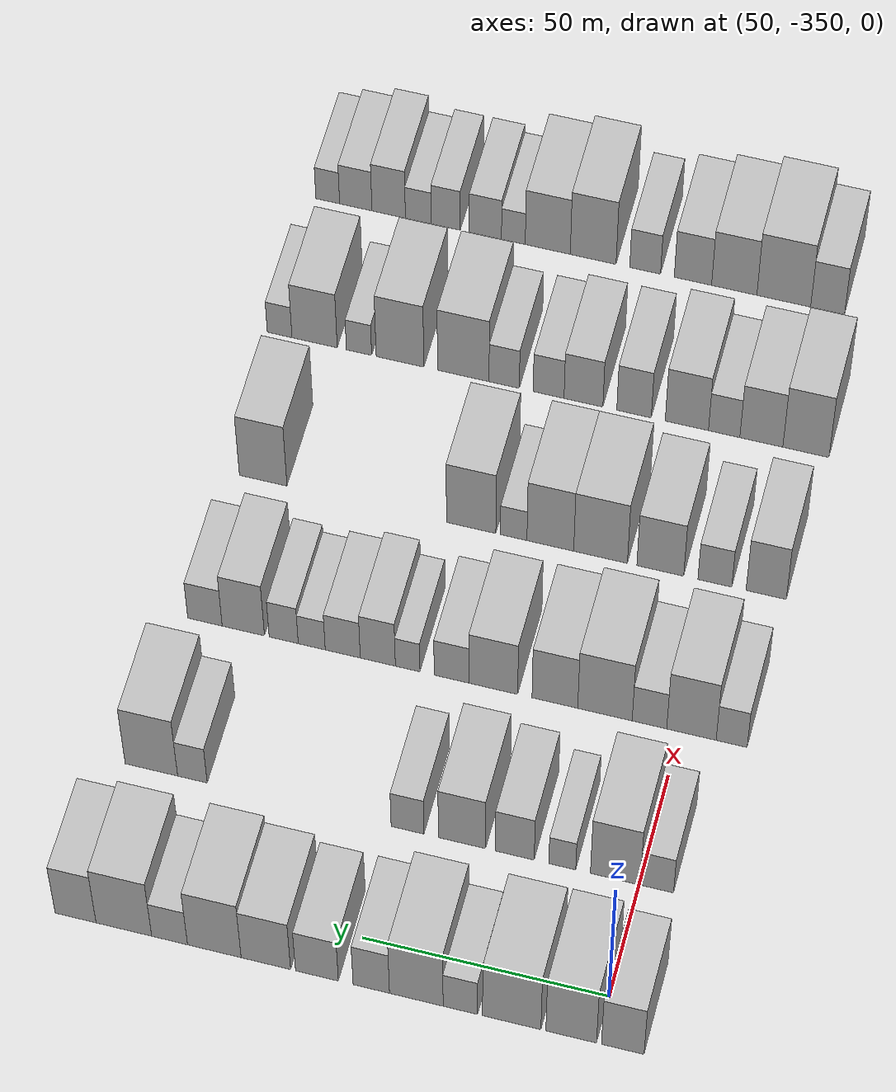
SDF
<sdf version="1.6">
 <world name="default">
  <model name="building_21">
   <static>1</static>
   <pose>50.0000 -355.0789 0 0.000000 0.000000 0.000000</pose>
   <link name="link">
    <pose>0 0 10.50 0 0 0</pose>
    <collision name="collision"><geometry><box><size>20.0000 8.5269 21.0000</size></box></geometry></collision>
    <visual name="visual">
     <cast_shadows>0</cast_shadows>
     <geometry><box><size>20.0000 8.5269 21.0000</size></box></geometry>
     <material>
      <script>
       <uri>model://HANNAS_wall/materials/scripts</uri>
       <uri>model://HANNAS_wall/materials/textures</uri>
       <name>vrc/HANNAS_wall</name>
      </script>
     </material>
    </visual>
   </link>
  </model>
  <model name="building_22">
   <static>1</static>
   <pose>50.0000 -344.7363 0 0.000000 0.000000 0.000000</pose>
   <link name="link">
    <pose>0 0 12.00 0 0 0</pose>
    <collision name="collision"><geometry><box><size>20.0000 10.1581 24.0000</size></box></geometry></collision>
    <visual name="visual">
     <cast_shadows>0</cast_shadows>
     <geometry><box><size>20.0000 10.1581 24.0000</size></box></geometry>
     <material>
      <script>
       <uri>model://HANNAS_wall/materials/scripts</uri>
       <uri>model://HANNAS_wall/materials/textures</uri>
       <name>vrc/HANNAS_wall</name>
      </script>
     </material>
    </visual>
   </link>
  </model>
  <model name="building_23">
   <static>1</static>
   <pose>50.0000 -332.7798 0 0.000000 0.000000 0.000000</pose>
   <link name="link">
    <pose>0 0 12.00 0 0 0</pose>
    <collision name="collision"><geometry><box><size>20.0000 11.7550 24.0000</size></box></geometry></collision>
    <visual name="visual">
     <cast_shadows>0</cast_shadows>
     <geometry><box><size>20.0000 11.7550 24.0000</size></box></geometry>
     <material>
      <script>
       <uri>model://HANNAS_wall/materials/scripts</uri>
       <uri>model://HANNAS_wall/materials/textures</uri>
       <name>vrc/HANNAS_wall</name>
      </script>
     </material>
    </visual>
   </link>
  </model>
  <model name="building_24">
   <static>1</static>
   <pose>50.0000 -322.4275 0 0.000000 0.000000 0.000000</pose>
   <link name="link">
    <pose>0 0 7.50 0 0 0</pose>
    <collision name="collision"><geometry><box><size>20.0000 6.9496 15.0000</size></box></geometry></collision>
    <visual name="visual">
     <cast_shadows>0</cast_shadows>
     <geometry><box><size>20.0000 6.9496 15.0000</size></box></geometry>
     <material>
      <script>
       <uri>model://HANNAS_wall/materials/scripts</uri>
       <uri>model://HANNAS_wall/materials/textures</uri>
       <name>vrc/HANNAS_wall</name>
      </script>
     </material>
    </visual>
   </link>
  </model>
  <model name="building_25">
   <static>1</static>
   <pose>50.0000 -313.5179 0 0.000000 0.000000 0.000000</pose>
   <link name="link">
    <pose>0 0 12.00 0 0 0</pose>
    <collision name="collision"><geometry><box><size>20.0000 10.8697 24.0000</size></box></geometry></collision>
    <visual name="visual">
     <cast_shadows>0</cast_shadows>
     <geometry><box><size>20.0000 10.8697 24.0000</size></box></geometry>
     <material>
      <script>
       <uri>model://HANNAS_wall/materials/scripts</uri>
       <uri>model://HANNAS_wall/materials/textures</uri>
       <name>vrc/HANNAS_wall</name>
      </script>
     </material>
    </visual>
   </link>
  </model>
  <model name="building_26">
   <static>1</static>
   <pose>50.0000 -304.3919 0 0.000000 0.000000 0.000000</pose>
   <link name="link">
    <pose>0 0 9.00 0 0 0</pose>
    <collision name="collision"><geometry><box><size>20.0000 7.3822 18.0000</size></box></geometry></collision>
    <visual name="visual">
     <cast_shadows>0</cast_shadows>
     <geometry><box><size>20.0000 7.3822 18.0000</size></box></geometry>
     <material>
      <script>
       <uri>model://HANNAS_wall/materials/scripts</uri>
       <uri>model://HANNAS_wall/materials/textures</uri>
       <name>vrc/HANNAS_wall</name>
      </script>
     </material>
    </visual>
   </link>
  </model>
  <model name="building_27">
   <static>1</static>
   <pose>50.0000 -293.3383 0 0.000000 0.000000 0.000000</pose>
   <link name="link">
    <pose>0 0 9.00 0 0 0</pose>
    <collision name="collision"><geometry><box><size>20.0000 8.7250 18.0000</size></box></geometry></collision>
    <visual name="visual">
     <cast_shadows>0</cast_shadows>
     <geometry><box><size>20.0000 8.7250 18.0000</size></box></geometry>
     <material>
      <script>
       <uri>model://HANNAS_wall/materials/scripts</uri>
       <uri>model://HANNAS_wall/materials/textures</uri>
       <name>vrc/HANNAS_wall</name>
      </script>
     </material>
    </visual>
   </link>
  </model>
  <model name="building_28">
   <static>1</static>
   <pose>50.0000 -282.9297 0 0.000000 0.000000 0.000000</pose>
   <link name="link">
    <pose>0 0 10.50 0 0 0</pose>
    <collision name="collision"><geometry><box><size>20.0000 10.0923 21.0000</size></box></geometry></collision>
    <visual name="visual">
     <cast_shadows>0</cast_shadows>
     <geometry><box><size>20.0000 10.0923 21.0000</size></box></geometry>
     <material>
      <script>
       <uri>model://HANNAS_wall/materials/scripts</uri>
       <uri>model://HANNAS_wall/materials/textures</uri>
       <name>vrc/HANNAS_wall</name>
      </script>
     </material>
    </visual>
   </link>
  </model>
  <model name="building_29">
   <static>1</static>
   <pose>50.0000 -272.3971 0 0.000000 0.000000 0.000000</pose>
   <link name="link">
    <pose>0 0 12.00 0 0 0</pose>
    <collision name="collision"><geometry><box><size>20.0000 10.9728 24.0000</size></box></geometry></collision>
    <visual name="visual">
     <cast_shadows>0</cast_shadows>
     <geometry><box><size>20.0000 10.9728 24.0000</size></box></geometry>
     <material>
      <script>
       <uri>model://HANNAS_wall/materials/scripts</uri>
       <uri>model://HANNAS_wall/materials/textures</uri>
       <name>vrc/HANNAS_wall</name>
      </script>
     </material>
    </visual>
   </link>
  </model>
  <model name="building_30">
   <static>1</static>
   <pose>50.0000 -263.2354 0 0.000000 0.000000 0.000000</pose>
   <link name="link">
    <pose>0 0 7.50 0 0 0</pose>
    <collision name="collision"><geometry><box><size>20.0000 7.3505 15.0000</size></box></geometry></collision>
    <visual name="visual">
     <cast_shadows>0</cast_shadows>
     <geometry><box><size>20.0000 7.3505 15.0000</size></box></geometry>
     <material>
      <script>
       <uri>model://HANNAS_wall/materials/scripts</uri>
       <uri>model://HANNAS_wall/materials/textures</uri>
       <name>vrc/HANNAS_wall</name>
      </script>
     </material>
    </visual>
   </link>
  </model>
  <model name="building_31">
   <static>1</static>
   <pose>50.0000 -253.8361 0 0.000000 0.000000 0.000000</pose>
   <link name="link">
    <pose>0 0 12.00 0 0 0</pose>
    <collision name="collision"><geometry><box><size>20.0000 11.4482 24.0000</size></box></geometry></collision>
    <visual name="visual">
     <cast_shadows>0</cast_shadows>
     <geometry><box><size>20.0000 11.4482 24.0000</size></box></geometry>
     <material>
      <script>
       <uri>model://HANNAS_wall/materials/scripts</uri>
       <uri>model://HANNAS_wall/materials/textures</uri>
       <name>vrc/HANNAS_wall</name>
      </script>
     </material>
    </visual>
   </link>
  </model>
  <model name="building_32">
   <static>1</static>
   <pose>50.0000 -243.9017 0 0.000000 0.000000 0.000000</pose>
   <link name="link">
    <pose>0 0 10.50 0 0 0</pose>
    <collision name="collision"><geometry><box><size>20.0000 8.4205 21.0000</size></box></geometry></collision>
    <visual name="visual">
     <cast_shadows>0</cast_shadows>
     <geometry><box><size>20.0000 8.4205 21.0000</size></box></geometry>
     <material>
      <script>
       <uri>model://HANNAS_wall/materials/scripts</uri>
       <uri>model://HANNAS_wall/materials/textures</uri>
       <name>vrc/HANNAS_wall</name>
      </script>
     </material>
    </visual>
   </link>
  </model>
  <model name="building_149">
   <static>1</static>
   <pose>85.0000 -353.4788 0 0.000000 0.000000 0.000000</pose>
   <link name="link">
    <pose>0 0 7.50 0 0 0</pose>
    <collision name="collision"><geometry><box><size>20.0000 6.8248 15.0000</size></box></geometry></collision>
    <visual name="visual">
     <cast_shadows>0</cast_shadows>
     <geometry><box><size>20.0000 6.8248 15.0000</size></box></geometry>
     <material>
      <script>
       <uri>model://HANNAS_wall/materials/scripts</uri>
       <uri>model://HANNAS_wall/materials/textures</uri>
       <name>vrc/HANNAS_wall</name>
      </script>
     </material>
    </visual>
   </link>
  </model>
  <model name="building_150">
   <static>1</static>
   <pose>85.0000 -344.9980 0 0.000000 0.000000 0.000000</pose>
   <link name="link">
    <pose>0 0 12.00 0 0 0</pose>
    <collision name="collision"><geometry><box><size>20.0000 10.1369 24.0000</size></box></geometry></collision>
    <visual name="visual">
     <cast_shadows>0</cast_shadows>
     <geometry><box><size>20.0000 10.1369 24.0000</size></box></geometry>
     <material>
      <script>
       <uri>model://HANNAS_wall/materials/scripts</uri>
       <uri>model://HANNAS_wall/materials/textures</uri>
       <name>vrc/HANNAS_wall</name>
      </script>
     </material>
    </visual>
   </link>
  </model>
  <model name="building_151">
   <static>1</static>
   <pose>85.0000 -334.1780 0 0.000000 0.000000 0.000000</pose>
   <link name="link">
    <pose>0 0 6.00 0 0 0</pose>
    <collision name="collision"><geometry><box><size>20.0000 5.5031 12.0000</size></box></geometry></collision>
    <visual name="visual">
     <cast_shadows>0</cast_shadows>
     <geometry><box><size>20.0000 5.5031 12.0000</size></box></geometry>
     <material>
      <script>
       <uri>model://HANNAS_wall/materials/scripts</uri>
       <uri>model://HANNAS_wall/materials/textures</uri>
       <name>vrc/HANNAS_wall</name>
      </script>
     </material>
    </visual>
   </link>
  </model>
  <model name="building_152">
   <static>1</static>
   <pose>85.0000 -324.4400 0 0.000000 0.000000 0.000000</pose>
   <link name="link">
    <pose>0 0 9.00 0 0 0</pose>
    <collision name="collision"><geometry><box><size>20.0000 7.9727 18.0000</size></box></geometry></collision>
    <visual name="visual">
     <cast_shadows>0</cast_shadows>
     <geometry><box><size>20.0000 7.9727 18.0000</size></box></geometry>
     <material>
      <script>
       <uri>model://HANNAS_wall/materials/scripts</uri>
       <uri>model://HANNAS_wall/materials/textures</uri>
       <name>vrc/HANNAS_wall</name>
      </script>
     </material>
    </visual>
   </link>
  </model>
  <model name="building_153">
   <static>1</static>
   <pose>85.0000 -313.6113 0 0.000000 0.000000 0.000000</pose>
   <link name="link">
    <pose>0 0 10.50 0 0 0</pose>
    <collision name="collision"><geometry><box><size>20.0000 9.6847 21.0000</size></box></geometry></collision>
    <visual name="visual">
     <cast_shadows>0</cast_shadows>
     <geometry><box><size>20.0000 9.6847 21.0000</size></box></geometry>
     <material>
      <script>
       <uri>model://HANNAS_wall/materials/scripts</uri>
       <uri>model://HANNAS_wall/materials/textures</uri>
       <name>vrc/HANNAS_wall</name>
      </script>
     </material>
    </visual>
   </link>
  </model>
  <model name="building_154">
   <static>1</static>
   <pose>85.0000 -302.3783 0 0.000000 0.000000 0.000000</pose>
   <link name="link">
    <pose>0 0 7.50 0 0 0</pose>
    <collision name="collision"><geometry><box><size>20.0000 6.7813 15.0000</size></box></geometry></collision>
    <visual name="visual">
     <cast_shadows>0</cast_shadows>
     <geometry><box><size>20.0000 6.7813 15.0000</size></box></geometry>
     <material>
      <script>
       <uri>model://HANNAS_wall/materials/scripts</uri>
       <uri>model://HANNAS_wall/materials/textures</uri>
       <name>vrc/HANNAS_wall</name>
      </script>
     </material>
    </visual>
   </link>
  </model>
  <model name="building_155">
   <static>1</static>
   <pose>85.0000 -257.7078 0 0.000000 0.000000 0.000000</pose>
   <link name="link">
    <pose>0 0 7.50 0 0 0</pose>
    <collision name="collision"><geometry><box><size>20.0000 6.1866 15.0000</size></box></geometry></collision>
    <visual name="visual">
     <cast_shadows>0</cast_shadows>
     <geometry><box><size>20.0000 6.1866 15.0000</size></box></geometry>
     <material>
      <script>
       <uri>model://HANNAS_wall/materials/scripts</uri>
       <uri>model://HANNAS_wall/materials/textures</uri>
       <name>vrc/HANNAS_wall</name>
      </script>
     </material>
    </visual>
   </link>
  </model>
  <model name="building_156">
   <static>1</static>
   <pose>85.0000 -249.1317 0 0.000000 0.000000 0.000000</pose>
   <link name="link">
    <pose>0 0 12.00 0 0 0</pose>
    <collision name="collision"><geometry><box><size>20.0000 10.9655 24.0000</size></box></geometry></collision>
    <visual name="visual">
     <cast_shadows>0</cast_shadows>
     <geometry><box><size>20.0000 10.9655 24.0000</size></box></geometry>
     <material>
      <script>
       <uri>model://HANNAS_wall/materials/scripts</uri>
       <uri>model://HANNAS_wall/materials/textures</uri>
       <name>vrc/HANNAS_wall</name>
      </script>
     </material>
    </visual>
   </link>
  </model>
  <model name="building_271">
   <static>1</static>
   <pose>120.0000 -360.5662 0 0.000000 0.000000 0.000000</pose>
   <link name="link">
    <pose>0 0 7.50 0 0 0</pose>
    <collision name="collision"><geometry><box><size>20.0000 6.4107 15.0000</size></box></geometry></collision>
    <visual name="visual">
     <cast_shadows>0</cast_shadows>
     <geometry><box><size>20.0000 6.4107 15.0000</size></box></geometry>
     <material>
      <script>
       <uri>model://HANNAS_wall/materials/scripts</uri>
       <uri>model://HANNAS_wall/materials/textures</uri>
       <name>vrc/HANNAS_wall</name>
      </script>
     </material>
    </visual>
   </link>
  </model>
  <model name="building_272">
   <static>1</static>
   <pose>120.0000 -352.2368 0 0.000000 0.000000 0.000000</pose>
   <link name="link">
    <pose>0 0 12.00 0 0 0</pose>
    <collision name="collision"><geometry><box><size>20.0000 10.2481 24.0000</size></box></geometry></collision>
    <visual name="visual">
     <cast_shadows>0</cast_shadows>
     <geometry><box><size>20.0000 10.2481 24.0000</size></box></geometry>
     <material>
      <script>
       <uri>model://HANNAS_wall/materials/scripts</uri>
       <uri>model://HANNAS_wall/materials/textures</uri>
       <name>vrc/HANNAS_wall</name>
      </script>
     </material>
    </visual>
   </link>
  </model>
  <model name="building_273">
   <static>1</static>
   <pose>120.0000 -343.5288 0 0.000000 0.000000 0.000000</pose>
   <link name="link">
    <pose>0 0 7.50 0 0 0</pose>
    <collision name="collision"><geometry><box><size>20.0000 7.1679 15.0000</size></box></geometry></collision>
    <visual name="visual">
     <cast_shadows>0</cast_shadows>
     <geometry><box><size>20.0000 7.1679 15.0000</size></box></geometry>
     <material>
      <script>
       <uri>model://HANNAS_wall/materials/scripts</uri>
       <uri>model://HANNAS_wall/materials/textures</uri>
       <name>vrc/HANNAS_wall</name>
      </script>
     </material>
    </visual>
   </link>
  </model>
  <model name="building_274">
   <static>1</static>
   <pose>120.0000 -334.2802 0 0.000000 0.000000 0.000000</pose>
   <link name="link">
    <pose>0 0 12.00 0 0 0</pose>
    <collision name="collision"><geometry><box><size>20.0000 11.3291 24.0000</size></box></geometry></collision>
    <visual name="visual">
     <cast_shadows>0</cast_shadows>
     <geometry><box><size>20.0000 11.3291 24.0000</size></box></geometry>
     <material>
      <script>
       <uri>model://HANNAS_wall/materials/scripts</uri>
       <uri>model://HANNAS_wall/materials/textures</uri>
       <name>vrc/HANNAS_wall</name>
      </script>
     </material>
    </visual>
   </link>
  </model>
  <model name="building_275">
   <static>1</static>
   <pose>120.0000 -323.8529 0 0.000000 0.000000 0.000000</pose>
   <link name="link">
    <pose>0 0 10.50 0 0 0</pose>
    <collision name="collision"><geometry><box><size>20.0000 9.5256 21.0000</size></box></geometry></collision>
    <visual name="visual">
     <cast_shadows>0</cast_shadows>
     <geometry><box><size>20.0000 9.5256 21.0000</size></box></geometry>
     <material>
      <script>
       <uri>model://HANNAS_wall/materials/scripts</uri>
       <uri>model://HANNAS_wall/materials/textures</uri>
       <name>vrc/HANNAS_wall</name>
      </script>
     </material>
    </visual>
   </link>
  </model>
  <model name="building_276">
   <static>1</static>
   <pose>120.0000 -310.9831 0 0.000000 0.000000 0.000000</pose>
   <link name="link">
    <pose>0 0 10.50 0 0 0</pose>
    <collision name="collision"><geometry><box><size>20.0000 10.2139 21.0000</size></box></geometry></collision>
    <visual name="visual">
     <cast_shadows>0</cast_shadows>
     <geometry><box><size>20.0000 10.2139 21.0000</size></box></geometry>
     <material>
      <script>
       <uri>model://HANNAS_wall/materials/scripts</uri>
       <uri>model://HANNAS_wall/materials/textures</uri>
       <name>vrc/HANNAS_wall</name>
      </script>
     </material>
    </visual>
   </link>
  </model>
  <model name="building_277">
   <static>1</static>
   <pose>120.0000 -302.2468 0 0.000000 0.000000 0.000000</pose>
   <link name="link">
    <pose>0 0 7.50 0 0 0</pose>
    <collision name="collision"><geometry><box><size>20.0000 7.2587 15.0000</size></box></geometry></collision>
    <visual name="visual">
     <cast_shadows>0</cast_shadows>
     <geometry><box><size>20.0000 7.2587 15.0000</size></box></geometry>
     <material>
      <script>
       <uri>model://HANNAS_wall/materials/scripts</uri>
       <uri>model://HANNAS_wall/materials/textures</uri>
       <name>vrc/HANNAS_wall</name>
      </script>
     </material>
    </visual>
   </link>
  </model>
  <model name="building_278">
   <static>1</static>
   <pose>120.0000 -293.0318 0 0.000000 0.000000 0.000000</pose>
   <link name="link">
    <pose>0 0 6.00 0 0 0</pose>
    <collision name="collision"><geometry><box><size>20.0000 5.1713 12.0000</size></box></geometry></collision>
    <visual name="visual">
     <cast_shadows>0</cast_shadows>
     <geometry><box><size>20.0000 5.1713 12.0000</size></box></geometry>
     <material>
      <script>
       <uri>model://HANNAS_wall/materials/scripts</uri>
       <uri>model://HANNAS_wall/materials/textures</uri>
       <name>vrc/HANNAS_wall</name>
      </script>
     </material>
    </visual>
   </link>
  </model>
  <model name="building_279">
   <static>1</static>
   <pose>120.0000 -286.7507 0 0.000000 0.000000 0.000000</pose>
   <link name="link">
    <pose>0 0 9.00 0 0 0</pose>
    <collision name="collision"><geometry><box><size>20.0000 7.3909 18.0000</size></box></geometry></collision>
    <visual name="visual">
     <cast_shadows>0</cast_shadows>
     <geometry><box><size>20.0000 7.3909 18.0000</size></box></geometry>
     <material>
      <script>
       <uri>model://HANNAS_wall/materials/scripts</uri>
       <uri>model://HANNAS_wall/materials/textures</uri>
       <name>vrc/HANNAS_wall</name>
      </script>
     </material>
    </visual>
   </link>
  </model>
  <model name="building_280">
   <static>1</static>
   <pose>120.0000 -279.3566 0 0.000000 0.000000 0.000000</pose>
   <link name="link">
    <pose>0 0 7.50 0 0 0</pose>
    <collision name="collision"><geometry><box><size>20.0000 7.3972 15.0000</size></box></geometry></collision>
    <visual name="visual">
     <cast_shadows>0</cast_shadows>
     <geometry><box><size>20.0000 7.3972 15.0000</size></box></geometry>
     <material>
      <script>
       <uri>model://HANNAS_wall/materials/scripts</uri>
       <uri>model://HANNAS_wall/materials/textures</uri>
       <name>vrc/HANNAS_wall</name>
      </script>
     </material>
    </visual>
   </link>
  </model>
  <model name="building_281">
   <static>1</static>
   <pose>120.0000 -272.8051 0 0.000000 0.000000 0.000000</pose>
   <link name="link">
    <pose>0 0 6.00 0 0 0</pose>
    <collision name="collision"><geometry><box><size>20.0000 5.7058 12.0000</size></box></geometry></collision>
    <visual name="visual">
     <cast_shadows>0</cast_shadows>
     <geometry><box><size>20.0000 5.7058 12.0000</size></box></geometry>
     <material>
      <script>
       <uri>model://HANNAS_wall/materials/scripts</uri>
       <uri>model://HANNAS_wall/materials/textures</uri>
       <name>vrc/HANNAS_wall</name>
      </script>
     </material>
    </visual>
   </link>
  </model>
  <model name="building_282">
   <static>1</static>
   <pose>120.0000 -266.8760 0 0.000000 0.000000 0.000000</pose>
   <link name="link">
    <pose>0 0 7.50 0 0 0</pose>
    <collision name="collision"><geometry><box><size>20.0000 6.1522 15.0000</size></box></geometry></collision>
    <visual name="visual">
     <cast_shadows>0</cast_shadows>
     <geometry><box><size>20.0000 6.1522 15.0000</size></box></geometry>
     <material>
      <script>
       <uri>model://HANNAS_wall/materials/scripts</uri>
       <uri>model://HANNAS_wall/materials/textures</uri>
       <name>vrc/HANNAS_wall</name>
      </script>
     </material>
    </visual>
   </link>
  </model>
  <model name="building_283">
   <static>1</static>
   <pose>120.0000 -258.3153 0 0.000000 0.000000 0.000000</pose>
   <link name="link">
    <pose>0 0 10.50 0 0 0</pose>
    <collision name="collision"><geometry><box><size>20.0000 8.9694 21.0000</size></box></geometry></collision>
    <visual name="visual">
     <cast_shadows>0</cast_shadows>
     <geometry><box><size>20.0000 8.9694 21.0000</size></box></geometry>
     <material>
      <script>
       <uri>model://HANNAS_wall/materials/scripts</uri>
       <uri>model://HANNAS_wall/materials/textures</uri>
       <name>vrc/HANNAS_wall</name>
      </script>
     </material>
    </visual>
   </link>
  </model>
  <model name="building_284">
   <static>1</static>
   <pose>120.0000 -250.1777 0 0.000000 0.000000 0.000000</pose>
   <link name="link">
    <pose>0 0 7.50 0 0 0</pose>
    <collision name="collision"><geometry><box><size>20.0000 7.3058 15.0000</size></box></geometry></collision>
    <visual name="visual">
     <cast_shadows>0</cast_shadows>
     <geometry><box><size>20.0000 7.3058 15.0000</size></box></geometry>
     <material>
      <script>
       <uri>model://HANNAS_wall/materials/scripts</uri>
       <uri>model://HANNAS_wall/materials/textures</uri>
       <name>vrc/HANNAS_wall</name>
      </script>
     </material>
    </visual>
   </link>
  </model>
  <model name="building_405">
   <static>1</static>
   <pose>155.0000 -359.6928 0 0.000000 0.000000 0.000000</pose>
   <link name="link">
    <pose>0 0 10.50 0 0 0</pose>
    <collision name="collision"><geometry><box><size>20.0000 8.4454 21.0000</size></box></geometry></collision>
    <visual name="visual">
     <cast_shadows>0</cast_shadows>
     <geometry><box><size>20.0000 8.4454 21.0000</size></box></geometry>
     <material>
      <script>
       <uri>model://HANNAS_wall/materials/scripts</uri>
       <uri>model://HANNAS_wall/materials/textures</uri>
       <name>vrc/HANNAS_wall</name>
      </script>
     </material>
    </visual>
   </link>
  </model>
  <model name="building_406">
   <static>1</static>
   <pose>155.0000 -348.8962 0 0.000000 0.000000 0.000000</pose>
   <link name="link">
    <pose>0 0 7.50 0 0 0</pose>
    <collision name="collision"><geometry><box><size>20.0000 7.1479 15.0000</size></box></geometry></collision>
    <visual name="visual">
     <cast_shadows>0</cast_shadows>
     <geometry><box><size>20.0000 7.1479 15.0000</size></box></geometry>
     <material>
      <script>
       <uri>model://HANNAS_wall/materials/scripts</uri>
       <uri>model://HANNAS_wall/materials/textures</uri>
       <name>vrc/HANNAS_wall</name>
      </script>
     </material>
    </visual>
   </link>
  </model>
  <model name="building_407">
   <static>1</static>
   <pose>155.0000 -337.3787 0 0.000000 0.000000 0.000000</pose>
   <link name="link">
    <pose>0 0 10.50 0 0 0</pose>
    <collision name="collision"><geometry><box><size>20.0000 9.8871 21.0000</size></box></geometry></collision>
    <visual name="visual">
     <cast_shadows>0</cast_shadows>
     <geometry><box><size>20.0000 9.8871 21.0000</size></box></geometry>
     <material>
      <script>
       <uri>model://HANNAS_wall/materials/scripts</uri>
       <uri>model://HANNAS_wall/materials/textures</uri>
       <name>vrc/HANNAS_wall</name>
      </script>
     </material>
    </visual>
   </link>
  </model>
  <model name="building_408">
   <static>1</static>
   <pose>155.0000 -324.7438 0 0.000000 0.000000 0.000000</pose>
   <link name="link">
    <pose>0 0 12.00 0 0 0</pose>
    <collision name="collision"><geometry><box><size>20.0000 11.3826 24.0000</size></box></geometry></collision>
    <visual name="visual">
     <cast_shadows>0</cast_shadows>
     <geometry><box><size>20.0000 11.3826 24.0000</size></box></geometry>
     <material>
      <script>
       <uri>model://HANNAS_wall/materials/scripts</uri>
       <uri>model://HANNAS_wall/materials/textures</uri>
       <name>vrc/HANNAS_wall</name>
      </script>
     </material>
    </visual>
   </link>
  </model>
  <model name="building_409">
   <static>1</static>
   <pose>155.0000 -314.0854 0 0.000000 0.000000 0.000000</pose>
   <link name="link">
    <pose>0 0 12.00 0 0 0</pose>
    <collision name="collision"><geometry><box><size>20.0000 9.9343 24.0000</size></box></geometry></collision>
    <visual name="visual">
     <cast_shadows>0</cast_shadows>
     <geometry><box><size>20.0000 9.9343 24.0000</size></box></geometry>
     <material>
      <script>
       <uri>model://HANNAS_wall/materials/scripts</uri>
       <uri>model://HANNAS_wall/materials/textures</uri>
       <name>vrc/HANNAS_wall</name>
      </script>
     </material>
    </visual>
   </link>
  </model>
  <model name="building_410">
   <static>1</static>
   <pose>155.0000 -306.3011 0 0.000000 0.000000 0.000000</pose>
   <link name="link">
    <pose>0 0 6.00 0 0 0</pose>
    <collision name="collision"><geometry><box><size>20.0000 5.6342 12.0000</size></box></geometry></collision>
    <visual name="visual">
     <cast_shadows>0</cast_shadows>
     <geometry><box><size>20.0000 5.6342 12.0000</size></box></geometry>
     <material>
      <script>
       <uri>model://HANNAS_wall/materials/scripts</uri>
       <uri>model://HANNAS_wall/materials/textures</uri>
       <name>vrc/HANNAS_wall</name>
      </script>
     </material>
    </visual>
   </link>
  </model>
  <model name="building_411">
   <static>1</static>
   <pose>155.0000 -297.2361 0 0.000000 0.000000 0.000000</pose>
   <link name="link">
    <pose>0 0 12.00 0 0 0</pose>
    <collision name="collision"><geometry><box><size>20.0000 10.4957 24.0000</size></box></geometry></collision>
    <visual name="visual">
     <cast_shadows>0</cast_shadows>
     <geometry><box><size>20.0000 10.4957 24.0000</size></box></geometry>
     <material>
      <script>
       <uri>model://HANNAS_wall/materials/scripts</uri>
       <uri>model://HANNAS_wall/materials/textures</uri>
       <name>vrc/HANNAS_wall</name>
      </script>
     </material>
    </visual>
   </link>
  </model>
  <model name="building_412">
   <static>1</static>
   <pose>155.0000 -252.6073 0 0.000000 0.000000 0.000000</pose>
   <link name="link">
    <pose>0 0 12.00 0 0 0</pose>
    <collision name="collision"><geometry><box><size>20.0000 10.2540 24.0000</size></box></geometry></collision>
    <visual name="visual">
     <cast_shadows>0</cast_shadows>
     <geometry><box><size>20.0000 10.2540 24.0000</size></box></geometry>
     <material>
      <script>
       <uri>model://HANNAS_wall/materials/scripts</uri>
       <uri>model://HANNAS_wall/materials/textures</uri>
       <name>vrc/HANNAS_wall</name>
      </script>
     </material>
    </visual>
   </link>
  </model>
  <model name="building_530">
   <static>1</static>
   <pose>190.0000 -360.1799 0 0.000000 0.000000 0.000000</pose>
   <link name="link">
    <pose>0 0 12.00 0 0 0</pose>
    <collision name="collision"><geometry><box><size>20.0000 9.8539 24.0000</size></box></geometry></collision>
    <visual name="visual">
     <cast_shadows>0</cast_shadows>
     <geometry><box><size>20.0000 9.8539 24.0000</size></box></geometry>
     <material>
      <script>
       <uri>model://HANNAS_wall/materials/scripts</uri>
       <uri>model://HANNAS_wall/materials/textures</uri>
       <name>vrc/HANNAS_wall</name>
      </script>
     </material>
    </visual>
   </link>
  </model>
  <model name="building_531">
   <static>1</static>
   <pose>190.0000 -350.6564 0 0.000000 0.000000 0.000000</pose>
   <link name="link">
    <pose>0 0 10.50 0 0 0</pose>
    <collision name="collision"><geometry><box><size>20.0000 9.1932 21.0000</size></box></geometry></collision>
    <visual name="visual">
     <cast_shadows>0</cast_shadows>
     <geometry><box><size>20.0000 9.1932 21.0000</size></box></geometry>
     <material>
      <script>
       <uri>model://HANNAS_wall/materials/scripts</uri>
       <uri>model://HANNAS_wall/materials/textures</uri>
       <name>vrc/HANNAS_wall</name>
      </script>
     </material>
    </visual>
   </link>
  </model>
  <model name="building_532">
   <static>1</static>
   <pose>190.0000 -342.6943 0 0.000000 0.000000 0.000000</pose>
   <link name="link">
    <pose>0 0 7.50 0 0 0</pose>
    <collision name="collision"><geometry><box><size>20.0000 6.7309 15.0000</size></box></geometry></collision>
    <visual name="visual">
     <cast_shadows>0</cast_shadows>
     <geometry><box><size>20.0000 6.7309 15.0000</size></box></geometry>
     <material>
      <script>
       <uri>model://HANNAS_wall/materials/scripts</uri>
       <uri>model://HANNAS_wall/materials/textures</uri>
       <name>vrc/HANNAS_wall</name>
      </script>
     </material>
    </visual>
   </link>
  </model>
  <model name="building_533">
   <static>1</static>
   <pose>190.0000 -334.6868 0 0.000000 0.000000 0.000000</pose>
   <link name="link">
    <pose>0 0 10.50 0 0 0</pose>
    <collision name="collision"><geometry><box><size>20.0000 9.2842 21.0000</size></box></geometry></collision>
    <visual name="visual">
     <cast_shadows>0</cast_shadows>
     <geometry><box><size>20.0000 9.2842 21.0000</size></box></geometry>
     <material>
      <script>
       <uri>model://HANNAS_wall/materials/scripts</uri>
       <uri>model://HANNAS_wall/materials/textures</uri>
       <name>vrc/HANNAS_wall</name>
      </script>
     </material>
    </visual>
   </link>
  </model>
  <model name="building_534">
   <static>1</static>
   <pose>190.0000 -323.3316 0 0.000000 0.000000 0.000000</pose>
   <link name="link">
    <pose>0 0 9.00 0 0 0</pose>
    <collision name="collision"><geometry><box><size>20.0000 7.4263 18.0000</size></box></geometry></collision>
    <visual name="visual">
     <cast_shadows>0</cast_shadows>
     <geometry><box><size>20.0000 7.4263 18.0000</size></box></geometry>
     <material>
      <script>
       <uri>model://HANNAS_wall/materials/scripts</uri>
       <uri>model://HANNAS_wall/materials/textures</uri>
       <name>vrc/HANNAS_wall</name>
      </script>
     </material>
    </visual>
   </link>
  </model>
  <model name="building_535">
   <static>1</static>
   <pose>190.0000 -312.4248 0 0.000000 0.000000 0.000000</pose>
   <link name="link">
    <pose>0 0 9.00 0 0 0</pose>
    <collision name="collision"><geometry><box><size>20.0000 8.3873 18.0000</size></box></geometry></collision>
    <visual name="visual">
     <cast_shadows>0</cast_shadows>
     <geometry><box><size>20.0000 8.3873 18.0000</size></box></geometry>
     <material>
      <script>
       <uri>model://HANNAS_wall/materials/scripts</uri>
       <uri>model://HANNAS_wall/materials/textures</uri>
       <name>vrc/HANNAS_wall</name>
      </script>
     </material>
    </visual>
   </link>
  </model>
  <model name="building_536">
   <static>1</static>
   <pose>190.0000 -304.8979 0 0.000000 0.000000 0.000000</pose>
   <link name="link">
    <pose>0 0 7.50 0 0 0</pose>
    <collision name="collision"><geometry><box><size>20.0000 6.6665 15.0000</size></box></geometry></collision>
    <visual name="visual">
     <cast_shadows>0</cast_shadows>
     <geometry><box><size>20.0000 6.6665 15.0000</size></box></geometry>
     <material>
      <script>
       <uri>model://HANNAS_wall/materials/scripts</uri>
       <uri>model://HANNAS_wall/materials/textures</uri>
       <name>vrc/HANNAS_wall</name>
      </script>
     </material>
    </visual>
   </link>
  </model>
  <model name="building_537">
   <static>1</static>
   <pose>190.0000 -295.2830 0 0.000000 0.000000 0.000000</pose>
   <link name="link">
    <pose>0 0 7.50 0 0 0</pose>
    <collision name="collision"><geometry><box><size>20.0000 6.5634 15.0000</size></box></geometry></collision>
    <visual name="visual">
     <cast_shadows>0</cast_shadows>
     <geometry><box><size>20.0000 6.5634 15.0000</size></box></geometry>
     <material>
      <script>
       <uri>model://HANNAS_wall/materials/scripts</uri>
       <uri>model://HANNAS_wall/materials/textures</uri>
       <name>vrc/HANNAS_wall</name>
      </script>
     </material>
    </visual>
   </link>
  </model>
  <model name="building_538">
   <static>1</static>
   <pose>190.0000 -286.4210 0 0.000000 0.000000 0.000000</pose>
   <link name="link">
    <pose>0 0 12.00 0 0 0</pose>
    <collision name="collision"><geometry><box><size>20.0000 11.1605 24.0000</size></box></geometry></collision>
    <visual name="visual">
     <cast_shadows>0</cast_shadows>
     <geometry><box><size>20.0000 11.1605 24.0000</size></box></geometry>
     <material>
      <script>
       <uri>model://HANNAS_wall/materials/scripts</uri>
       <uri>model://HANNAS_wall/materials/textures</uri>
       <name>vrc/HANNAS_wall</name>
      </script>
     </material>
    </visual>
   </link>
  </model>
  <model name="building_539">
   <static>1</static>
   <pose>190.0000 -272.6351 0 0.000000 0.000000 0.000000</pose>
   <link name="link">
    <pose>0 0 12.00 0 0 0</pose>
    <collision name="collision"><geometry><box><size>20.0000 10.4113 24.0000</size></box></geometry></collision>
    <visual name="visual">
     <cast_shadows>0</cast_shadows>
     <geometry><box><size>20.0000 10.4113 24.0000</size></box></geometry>
     <material>
      <script>
       <uri>model://HANNAS_wall/materials/scripts</uri>
       <uri>model://HANNAS_wall/materials/textures</uri>
       <name>vrc/HANNAS_wall</name>
      </script>
     </material>
    </visual>
   </link>
  </model>
  <model name="building_540">
   <static>1</static>
   <pose>190.0000 -263.6709 0 0.000000 0.000000 0.000000</pose>
   <link name="link">
    <pose>0 0 6.00 0 0 0</pose>
    <collision name="collision"><geometry><box><size>20.0000 5.5170 12.0000</size></box></geometry></collision>
    <visual name="visual">
     <cast_shadows>0</cast_shadows>
     <geometry><box><size>20.0000 5.5170 12.0000</size></box></geometry>
     <material>
      <script>
       <uri>model://HANNAS_wall/materials/scripts</uri>
       <uri>model://HANNAS_wall/materials/textures</uri>
       <name>vrc/HANNAS_wall</name>
      </script>
     </material>
    </visual>
   </link>
  </model>
  <model name="building_541">
   <static>1</static>
   <pose>190.0000 -253.9542 0 0.000000 0.000000 0.000000</pose>
   <link name="link">
    <pose>0 0 10.50 0 0 0</pose>
    <collision name="collision"><geometry><box><size>20.0000 9.9164 21.0000</size></box></geometry></collision>
    <visual name="visual">
     <cast_shadows>0</cast_shadows>
     <geometry><box><size>20.0000 9.9164 21.0000</size></box></geometry>
     <material>
      <script>
       <uri>model://HANNAS_wall/materials/scripts</uri>
       <uri>model://HANNAS_wall/materials/textures</uri>
       <name>vrc/HANNAS_wall</name>
      </script>
     </material>
    </visual>
   </link>
  </model>
  <model name="building_542">
   <static>1</static>
   <pose>190.0000 -246.2904 0 0.000000 0.000000 0.000000</pose>
   <link name="link">
    <pose>0 0 6.00 0 0 0</pose>
    <collision name="collision"><geometry><box><size>20.0000 5.4113 12.0000</size></box></geometry></collision>
    <visual name="visual">
     <cast_shadows>0</cast_shadows>
     <geometry><box><size>20.0000 5.4113 12.0000</size></box></geometry>
     <material>
      <script>
       <uri>model://HANNAS_wall/materials/scripts</uri>
       <uri>model://HANNAS_wall/materials/textures</uri>
       <name>vrc/HANNAS_wall</name>
      </script>
     </material>
    </visual>
   </link>
  </model>
  <model name="building_651">
   <static>1</static>
   <pose>225.0000 -357.0422 0 0.000000 0.000000 0.000000</pose>
   <link name="link">
    <pose>0 0 9.00 0 0 0</pose>
    <collision name="collision"><geometry><box><size>20.0000 7.3581 18.0000</size></box></geometry></collision>
    <visual name="visual">
     <cast_shadows>0</cast_shadows>
     <geometry><box><size>20.0000 7.3581 18.0000</size></box></geometry>
     <material>
      <script>
       <uri>model://HANNAS_wall/materials/scripts</uri>
       <uri>model://HANNAS_wall/materials/textures</uri>
       <name>vrc/HANNAS_wall</name>
      </script>
     </material>
    </visual>
   </link>
  </model>
  <model name="building_652">
   <static>1</static>
   <pose>225.0000 -347.5139 0 0.000000 0.000000 0.000000</pose>
   <link name="link">
    <pose>0 0 12.00 0 0 0</pose>
    <collision name="collision"><geometry><box><size>20.0000 11.6985 24.0000</size></box></geometry></collision>
    <visual name="visual">
     <cast_shadows>0</cast_shadows>
     <geometry><box><size>20.0000 11.6985 24.0000</size></box></geometry>
     <material>
      <script>
       <uri>model://HANNAS_wall/materials/scripts</uri>
       <uri>model://HANNAS_wall/materials/textures</uri>
       <name>vrc/HANNAS_wall</name>
      </script>
     </material>
    </visual>
   </link>
  </model>
  <model name="building_653">
   <static>1</static>
   <pose>225.0000 -336.7289 0 0.000000 0.000000 0.000000</pose>
   <link name="link">
    <pose>0 0 10.50 0 0 0</pose>
    <collision name="collision"><geometry><box><size>20.0000 9.8713 21.0000</size></box></geometry></collision>
    <visual name="visual">
     <cast_shadows>0</cast_shadows>
     <geometry><box><size>20.0000 9.8713 21.0000</size></box></geometry>
     <material>
      <script>
       <uri>model://HANNAS_wall/materials/scripts</uri>
       <uri>model://HANNAS_wall/materials/textures</uri>
       <name>vrc/HANNAS_wall</name>
      </script>
     </material>
    </visual>
   </link>
  </model>
  <model name="building_654">
   <static>1</static>
   <pose>225.0000 -327.7170 0 0.000000 0.000000 0.000000</pose>
   <link name="link">
    <pose>0 0 9.00 0 0 0</pose>
    <collision name="collision"><geometry><box><size>20.0000 8.1525 18.0000</size></box></geometry></collision>
    <visual name="visual">
     <cast_shadows>0</cast_shadows>
     <geometry><box><size>20.0000 8.1525 18.0000</size></box></geometry>
     <material>
      <script>
       <uri>model://HANNAS_wall/materials/scripts</uri>
       <uri>model://HANNAS_wall/materials/textures</uri>
       <name>vrc/HANNAS_wall</name>
      </script>
     </material>
    </visual>
   </link>
  </model>
  <model name="building_655">
   <static>1</static>
   <pose>225.0000 -317.2643 0 0.000000 0.000000 0.000000</pose>
   <link name="link">
    <pose>0 0 7.50 0 0 0</pose>
    <collision name="collision"><geometry><box><size>20.0000 6.7530 15.0000</size></box></geometry></collision>
    <visual name="visual">
     <cast_shadows>0</cast_shadows>
     <geometry><box><size>20.0000 6.7530 15.0000</size></box></geometry>
     <material>
      <script>
       <uri>model://HANNAS_wall/materials/scripts</uri>
       <uri>model://HANNAS_wall/materials/textures</uri>
       <name>vrc/HANNAS_wall</name>
      </script>
     </material>
    </visual>
   </link>
  </model>
  <model name="building_656">
   <static>1</static>
   <pose>225.0000 -305.8625 0 0.000000 0.000000 0.000000</pose>
   <link name="link">
    <pose>0 0 12.00 0 0 0</pose>
    <collision name="collision"><geometry><box><size>20.0000 10.0506 24.0000</size></box></geometry></collision>
    <visual name="visual">
     <cast_shadows>0</cast_shadows>
     <geometry><box><size>20.0000 10.0506 24.0000</size></box></geometry>
     <material>
      <script>
       <uri>model://HANNAS_wall/materials/scripts</uri>
       <uri>model://HANNAS_wall/materials/textures</uri>
       <name>vrc/HANNAS_wall</name>
      </script>
     </material>
    </visual>
   </link>
  </model>
  <model name="building_657">
   <static>1</static>
   <pose>225.0000 -295.8842 0 0.000000 0.000000 0.000000</pose>
   <link name="link">
    <pose>0 0 10.50 0 0 0</pose>
    <collision name="collision"><geometry><box><size>20.0000 9.9059 21.0000</size></box></geometry></collision>
    <visual name="visual">
     <cast_shadows>0</cast_shadows>
     <geometry><box><size>20.0000 9.9059 21.0000</size></box></geometry>
     <material>
      <script>
       <uri>model://HANNAS_wall/materials/scripts</uri>
       <uri>model://HANNAS_wall/materials/textures</uri>
       <name>vrc/HANNAS_wall</name>
      </script>
     </material>
    </visual>
   </link>
  </model>
  <model name="building_658">
   <static>1</static>
   <pose>225.0000 -288.3071 0 0.000000 0.000000 0.000000</pose>
   <link name="link">
    <pose>0 0 6.00 0 0 0</pose>
    <collision name="collision"><geometry><box><size>20.0000 5.2484 12.0000</size></box></geometry></collision>
    <visual name="visual">
     <cast_shadows>0</cast_shadows>
     <geometry><box><size>20.0000 5.2484 12.0000</size></box></geometry>
     <material>
      <script>
       <uri>model://HANNAS_wall/materials/scripts</uri>
       <uri>model://HANNAS_wall/materials/textures</uri>
       <name>vrc/HANNAS_wall</name>
      </script>
     </material>
    </visual>
   </link>
  </model>
  <model name="building_659">
   <static>1</static>
   <pose>225.0000 -282.1364 0 0.000000 0.000000 0.000000</pose>
   <link name="link">
    <pose>0 0 7.50 0 0 0</pose>
    <collision name="collision"><geometry><box><size>20.0000 7.0931 15.0000</size></box></geometry></collision>
    <visual name="visual">
     <cast_shadows>0</cast_shadows>
     <geometry><box><size>20.0000 7.0931 15.0000</size></box></geometry>
     <material>
      <script>
       <uri>model://HANNAS_wall/materials/scripts</uri>
       <uri>model://HANNAS_wall/materials/textures</uri>
       <name>vrc/HANNAS_wall</name>
      </script>
     </material>
    </visual>
   </link>
  </model>
  <model name="building_660">
   <static>1</static>
   <pose>225.0000 -273.3823 0 0.000000 0.000000 0.000000</pose>
   <link name="link">
    <pose>0 0 7.50 0 0 0</pose>
    <collision name="collision"><geometry><box><size>20.0000 6.4150 15.0000</size></box></geometry></collision>
    <visual name="visual">
     <cast_shadows>0</cast_shadows>
     <geometry><box><size>20.0000 6.4150 15.0000</size></box></geometry>
     <material>
      <script>
       <uri>model://HANNAS_wall/materials/scripts</uri>
       <uri>model://HANNAS_wall/materials/textures</uri>
       <name>vrc/HANNAS_wall</name>
      </script>
     </material>
    </visual>
   </link>
  </model>
  <model name="building_661">
   <static>1</static>
   <pose>225.0000 -267.3009 0 0.000000 0.000000 0.000000</pose>
   <link name="link">
    <pose>0 0 6.00 0 0 0</pose>
    <collision name="collision"><geometry><box><size>20.0000 5.7480 12.0000</size></box></geometry></collision>
    <visual name="visual">
     <cast_shadows>0</cast_shadows>
     <geometry><box><size>20.0000 5.7480 12.0000</size></box></geometry>
     <material>
      <script>
       <uri>model://HANNAS_wall/materials/scripts</uri>
       <uri>model://HANNAS_wall/materials/textures</uri>
       <name>vrc/HANNAS_wall</name>
      </script>
     </material>
    </visual>
   </link>
  </model>
  <model name="building_662">
   <static>1</static>
   <pose>225.0000 -260.7139 0 0.000000 0.000000 0.000000</pose>
   <link name="link">
    <pose>0 0 9.00 0 0 0</pose>
    <collision name="collision"><geometry><box><size>20.0000 7.4259 18.0000</size></box></geometry></collision>
    <visual name="visual">
     <cast_shadows>0</cast_shadows>
     <geometry><box><size>20.0000 7.4259 18.0000</size></box></geometry>
     <material>
      <script>
       <uri>model://HANNAS_wall/materials/scripts</uri>
       <uri>model://HANNAS_wall/materials/textures</uri>
       <name>vrc/HANNAS_wall</name>
      </script>
     </material>
    </visual>
   </link>
  </model>
  <model name="building_663">
   <static>1</static>
   <pose>225.0000 -253.4018 0 0.000000 0.000000 0.000000</pose>
   <link name="link">
    <pose>0 0 7.50 0 0 0</pose>
    <collision name="collision"><geometry><box><size>20.0000 7.1983 15.0000</size></box></geometry></collision>
    <visual name="visual">
     <cast_shadows>0</cast_shadows>
     <geometry><box><size>20.0000 7.1983 15.0000</size></box></geometry>
     <material>
      <script>
       <uri>model://HANNAS_wall/materials/scripts</uri>
       <uri>model://HANNAS_wall/materials/textures</uri>
       <name>vrc/HANNAS_wall</name>
      </script>
     </material>
    </visual>
   </link>
  </model>
  <model name="building_664">
   <static>1</static>
   <pose>225.0000 -247.1587 0 0.000000 0.000000 0.000000</pose>
   <link name="link">
    <pose>0 0 6.00 0 0 0</pose>
    <collision name="collision"><geometry><box><size>20.0000 5.2878 12.0000</size></box></geometry></collision>
    <visual name="visual">
     <cast_shadows>0</cast_shadows>
     <geometry><box><size>20.0000 5.2878 12.0000</size></box></geometry>
     <material>
      <script>
       <uri>model://HANNAS_wall/materials/scripts</uri>
       <uri>model://HANNAS_wall/materials/textures</uri>
       <name>vrc/HANNAS_wall</name>
      </script>
     </material>
    </visual>
   </link>
  </model>
 </world>
</sdf>
